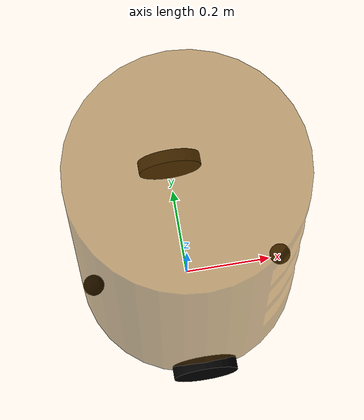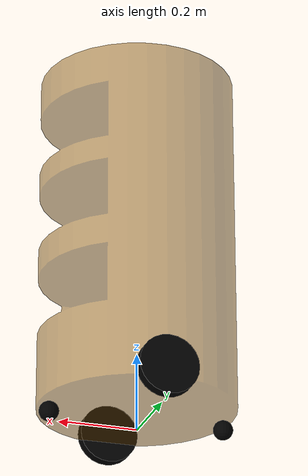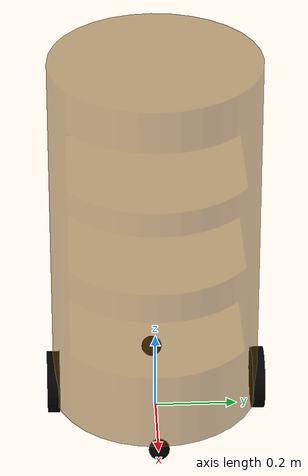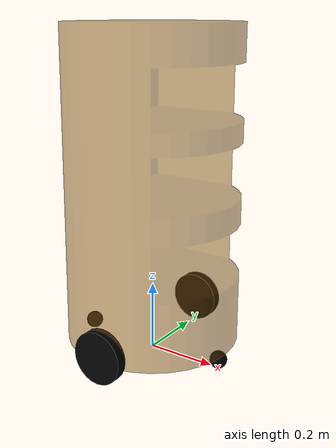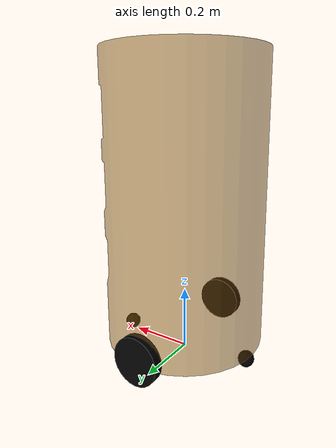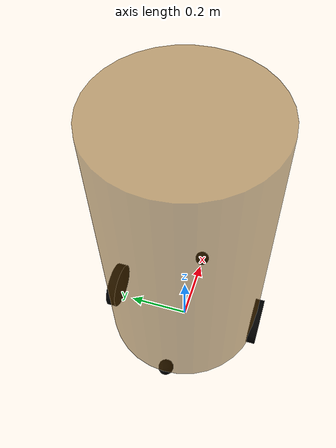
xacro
<!-- 组合底盘与雷达 -->
<robot name="robot" xmlns:xacro="http://wiki.ros.org/xacro">
    <xacro:include filename="car.xacro" />
</robot>

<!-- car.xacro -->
<!--
    使用 xacro 优化 URDF 版的小车底盘实现：
-->
<robot name="my_base" xmlns:xacro="http://www.ros.org/wiki/xacro">
    <!-- 封装变量、常量 -->
    <xacro:property name="PI" value="3.1415926"/>

    <!-- 底盘属性 -->
    <xacro:property name="base_footprint_radius" value="0.001" />
    <xacro:property name="base_link_radius" value="0.25" />
    <xacro:property name="base_link_length" value="0.9" />
    <xacro:property name="earth_space" value="0.05" />
    <xacro:property name="base_link_m" value="5.0" />

    <!-- 底盘 -->
    <link name="base_footprint">
      <visual>
        <geometry>
          <sphere radius="${base_footprint_radius}" />
        </geometry>
      </visual>
    </link>

    <link name="base_link">
      <visual>
        <geometry>
          <!-- 使用DAE模型作为视觉 -->
          <mesh filename="package://zj_base/meshes/modle.dae" />
        </geometry>
        <origin xyz="0 0 0" rpy="0 0 0" />
        <material name="yellow">
          <color rgba="0.5 0.3 0.0 0.5" />
        </material>
      </visual>
      <collision>
        <geometry>
          <!-- 使用相同的DAE模型作为碰撞体 -->
          <mesh filename="package://zj_base/meshes/modle.dae" />
        </geometry>
        <origin xyz="0 0 0" rpy="0 0 0" />
      </collision>
      <xacro:cylinder_inertial_matrix m="${base_link_m}" r="${base_link_radius}" h="${base_link_length}" />
    </link>

    <joint name="base_link2base_footprint" type="fixed">
      <parent link="base_footprint" />
      <child link="base_link" />
      <origin xyz="0 0 ${earth_space + base_link_length / 2 }" />
    </joint>

    <!-- 驱动轮属性 -->
    <xacro:property name="wheel_radius" value="0.075" />
    <xacro:property name="wheel_length" value="0.03" />
    <xacro:property name="wheel_m" value="0.2" />

    <!-- 驱动轮宏实现 -->
    <xacro:macro name="add_wheels" params="name flag">
      <link name="${name}_wheel">
        <visual>
          <geometry>
            <cylinder radius="${wheel_radius}" length="${wheel_length}" />
          </geometry>
          <origin xyz="0.0 0.0 0.0" rpy="${PI / 2} 0.0 0.0" />
          <material name="black">
            <color rgba="0.0 0.0 0.0 1.0" />
          </material>
        </visual>
        <collision>
          <geometry>
            <cylinder radius="${wheel_radius}" length="${wheel_length}" />
          </geometry>
          <origin xyz="0.0 0.0 0.0" rpy="${PI / 2} 0.0 0.0" />
        </collision>
        <xacro:cylinder_inertial_matrix m="${wheel_m}" r="${wheel_radius}" h="${wheel_length}" />
      </link>

      <joint name="${name}_wheel2base_link" type="continuous">
        <parent link="base_link" />
        <child link="${name}_wheel" />
        <origin xyz="0 ${flag * base_link_radius} ${-(earth_space + base_link_length / 2 - wheel_radius) }" />
        <axis xyz="0 1 0" />
      </joint>

      <gazebo reference="${name}_wheel">
        <material>Gazebo/Black</material>
      </gazebo>
    </xacro:macro>

    <xacro:add_wheels name="left" flag="1" />
    <xacro:add_wheels name="right" flag="-1" />

    <!-- 支撑轮属性 -->
    <xacro:property name="support_wheel_radius" value="0.025" />
    <xacro:property name="support_wheel_m" value="0.1" />

    <!-- 支撑轮宏 -->
    <xacro:macro name="add_support_wheel" params="name flag" >
      <link name="${name}_wheel">
        <visual>
            <geometry>
                <sphere radius="${support_wheel_radius}" />
            </geometry>
            <origin xyz="0 0 0" rpy="0 0 0" />
            <material name="black">
            <color rgba="0.0 0.0 0.0 1.0" />
          </material>
        </visual>
        <collision>
            <geometry>
                <sphere radius="${support_wheel_radius}" />
            </geometry>
            <origin xyz="0 0 0" rpy="0 0 0" />
        </collision>
        <xacro:sphere_inertial_matrix m="${support_wheel_m}" r="${support_wheel_radius}" />
      </link>

      <joint name="${name}_wheel2base_link" type="continuous">
          <parent link="base_link" />
          <child link="${name}_wheel" />
          <origin xyz="${flag * (base_link_radius - support_wheel_radius)} 0 ${-(base_link_length / 2 + earth_space / 2)}" />
          <axis xyz="1 0 0" />
      </joint>

      <gazebo reference="${name}_wheel">
        <material>Gazebo/Black</material>
        <mu1>0.0</mu1>
        <mu2>0.0</mu2>
        <kp>1000000.0</kp>
        <kd>100.0</kd>
      </gazebo>
    </xacro:macro>

    <xacro:add_support_wheel name="front" flag="1" />
    <xacro:add_support_wheel name="back" flag="-1" />

    <!-- 惯性矩阵宏定义 -->
    <xacro:macro name="cylinder_inertial_matrix" params="m r h">
      <inertial>
        <mass value="${m}" />
        <inertia ixx="${m*(3*r*r+h*h)/12}" ixy="0" ixz="0"
                 iyy="${m*(3*r*r+h*h)/12}" iyz="0"
                 izz="${m*r*r/2}" />
      </inertial>
    </xacro:macro>

    <xacro:macro name="sphere_inertial_matrix" params="m r">
      <inertial>
        <mass value="${m}" />
        <inertia ixx="${2*m*r*r/5}" ixy="0" ixz="0"
                 iyy="${2*m*r*r/5}" iyz="0"
                 izz="${2*m*r*r/5}" />
      </inertial>
    </xacro:macro>

</robot>
